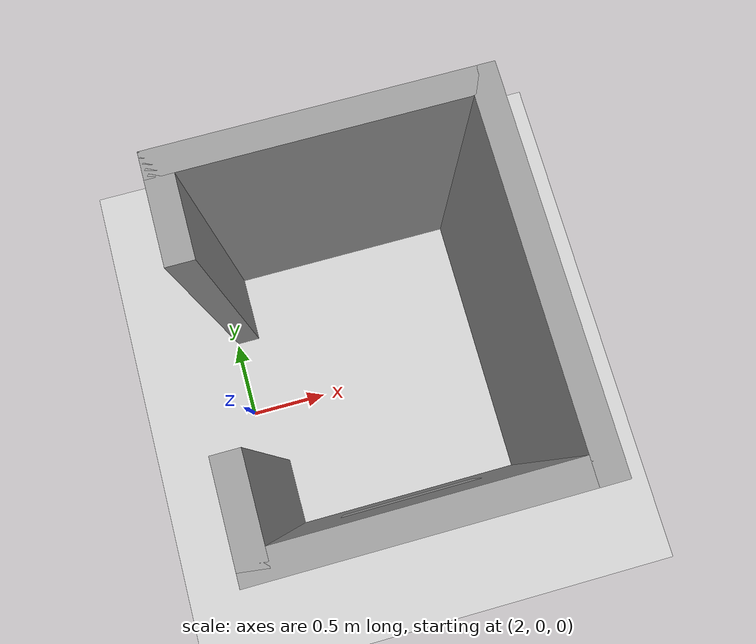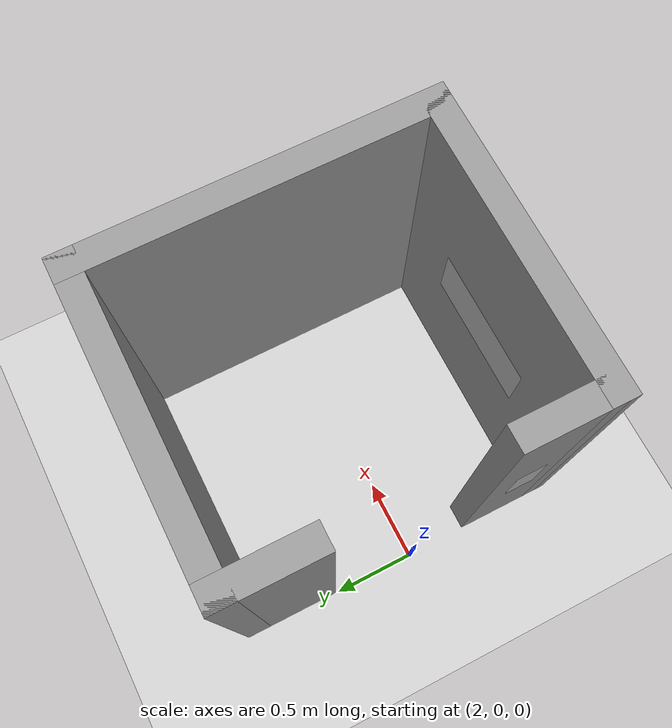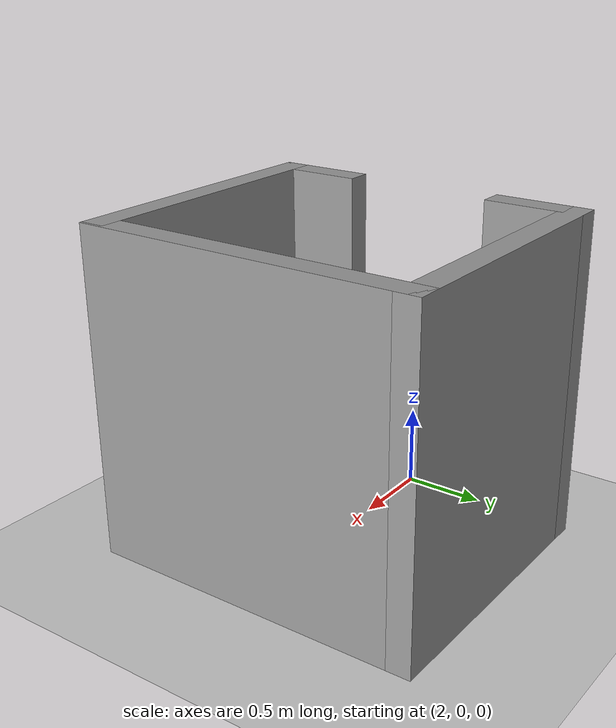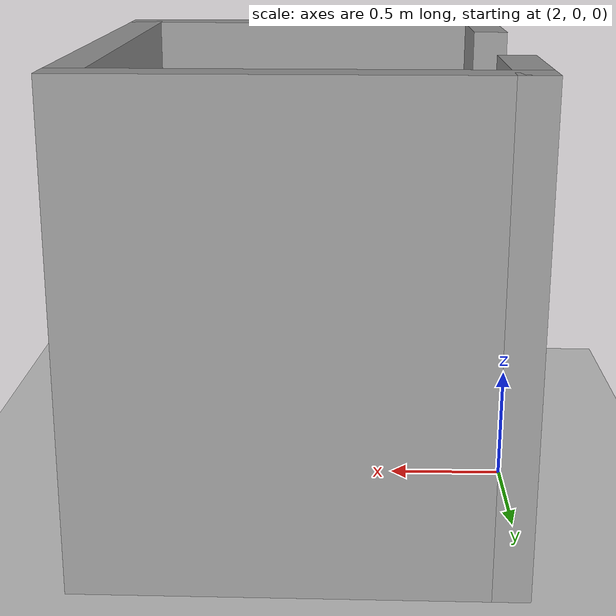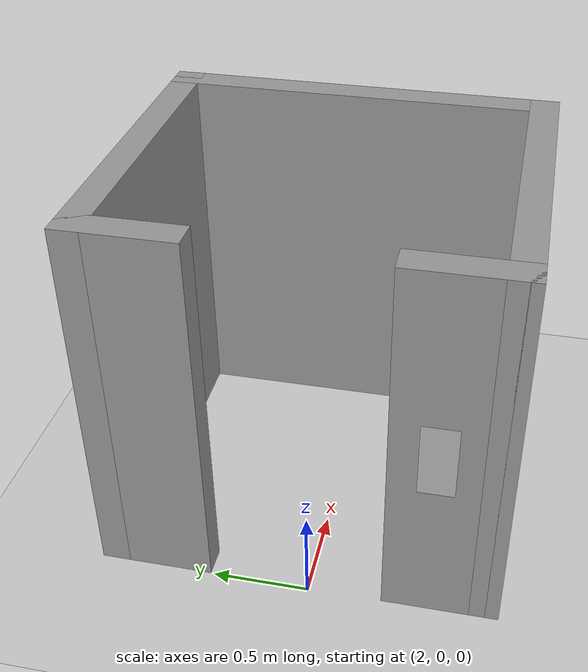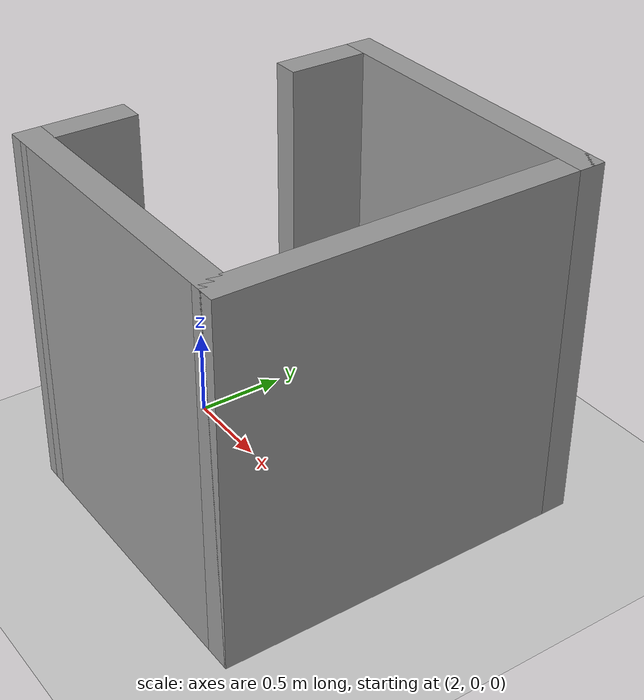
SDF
<sdf version="1.6">
 <world name="default">
  <light name="sun" type="directional">
   <pose>0 0 10 0 -0 0</pose>
   <diffuse>0.8 0.8 0.8 1</diffuse>
   <specular>0.2 0.2 0.2 1</specular>
   <attenuation>
    <range>1000</range>
    <constant>0.9</constant>
    <linear>0.01</linear>
    <quadratic>0.001</quadratic>
   </attenuation>
   <direction>-0.5 0.1 -0.9</direction>
  </light>
  <model name="ground_plane">
   <static>1</static>
   <link name="link">
    <collision name="collision">
     <geometry><plane><normal>0 0 1</normal><size>100 100</size></plane></geometry>
     <surface><friction><ode><mu>100</mu><mu2>50</mu2></ode></friction></surface>
    </collision>
    <visual name="visual">
     <cast_shadows>0</cast_shadows>
     <geometry><plane><normal>0 0 1</normal><size>100 100</size></plane></geometry>
     <material>
      <script><uri>file://media/materials/scripts/gazebo.material</uri><name>Gazebo/Grey</name></script>
     </material>
    </visual>
   </link>
  </model>
  <gravity>0 0 -9.8</gravity>
  <magnetic_field>6e-06 2.3e-05 -4.2e-05</magnetic_field>
  <atmosphere type="adiabatic"/>
  <physics name="default_physics" default="0" type="ode">
   <max_step_size>0.001</max_step_size>
   <real_time_factor>1</real_time_factor>
   <real_time_update_rate>1000</real_time_update_rate>
  </physics>
  <scene><ambient>0.4 0.4 0.4 1</ambient><background>0.7 0.7 0.7 1</background><shadows>1</shadows></scene>
  <audio><device>default</device></audio>
  <spherical_coordinates>
   <surface_model>EARTH_WGS84</surface_model>
   <latitude_deg>0</latitude_deg>
   <longitude_deg>0</longitude_deg>
   <elevation>0</elevation>
   <heading_deg>0</heading_deg>
  </spherical_coordinates>
  <model name="Untitled">
   <pose>2.90001 0.07 0 0 -0 0</pose>
   <link name="Wall_0">
    <pose>-0.819991 -0 0 0 -0 1.57078</pose>
    <visual name="Wall_0_Visual_0">
     <pose>-0.7475 0 1 0 -0 0</pose>
     <geometry><box><size>0.595 0.15 2</size></box></geometry>
     <material>
      <script><uri>file://media/materials/scripts/gazebo.material</uri><name>Gazebo/Grey</name></script>
      <ambient>1 1 1 1</ambient>
     </material>
     <meta><layer>0</layer></meta>
    </visual>
    <collision name="Wall_0_Collision_0">
     <geometry><box><size>0.595 0.15 2</size></box></geometry>
     <pose>-0.7475 0 1 0 -0 0</pose>
    </collision>
    <visual name="Wall_0_Visual_1">
     <pose>0.7475 0 1 0 -0 0</pose>
     <geometry><box><size>0.595 0.15 2</size></box></geometry>
     <material>
      <script><uri>file://media/materials/scripts/gazebo.material</uri><name>Gazebo/Grey</name></script>
      <ambient>1 1 1 1</ambient>
     </material>
     <meta><layer>0</layer></meta>
    </visual>
    <collision name="Wall_0_Collision_1">
     <geometry><box><size>0.595 0.15 2</size></box></geometry>
     <pose>0.7475 0 1 0 -0 0</pose>
    </collision>
   </link>
   <link name="Wall_2">
    <collision name="Wall_2_Collision">
     <geometry><box><size>1.79 0.15 2</size></box></geometry>
     <pose>0 0 1 0 -0 0</pose>
    </collision>
    <visual name="Wall_2_Visual">
     <pose>0 0 1 0 -0 0</pose>
     <geometry><box><size>1.79 0.15 2</size></box></geometry>
     <material>
      <script><uri>file://media/materials/scripts/gazebo.material</uri><name>Gazebo/Grey</name></script>
      <ambient>1 1 1 1</ambient>
     </material>
     <meta><layer>0</layer></meta>
    </visual>
    <pose>-7e-06 -0.97 0 0 -0 0</pose>
   </link>
   <link name="Wall_4">
    <collision name="Wall_4_Collision">
     <geometry><box><size>2.09 0.15 2</size></box></geometry>
     <pose>0 0 1 0 -0 0</pose>
    </collision>
    <visual name="Wall_4_Visual">
     <pose>0 0 1 0 -0 0</pose>
     <geometry><box><size>2.09 0.15 2</size></box></geometry>
     <material>
      <script><uri>file://media/materials/scripts/gazebo.material</uri><name>Gazebo/Grey</name></script>
      <ambient>1 1 1 1</ambient>
     </material>
     <meta><layer>0</layer></meta>
    </visual>
    <pose>0.819993 -0 0 0 -0 1.5708</pose>
   </link>
   <link name="Wall_5">
    <collision name="Wall_5_Collision">
     <geometry><box><size>1.79 0.15 2</size></box></geometry>
     <pose>0 0 1 0 -0 0</pose>
    </collision>
    <visual name="Wall_5_Visual">
     <pose>0 0 1 0 -0 0</pose>
     <geometry><box><size>1.79 0.15 2</size></box></geometry>
     <material>
      <script><uri>file://media/materials/scripts/gazebo.material</uri><name>Gazebo/Grey</name></script>
      <ambient>1 1 1 1</ambient>
     </material>
     <meta><layer>0</layer></meta>
    </visual>
    <pose>9e-06 0.97 0 0 -0 -3.14159</pose>
   </link>
   <static>1</static>
  </model>
  <model name="elevator_updown_button">
   <static>1</static>
   <link name="link">
    <collision name="collision">
     <geometry><plane><normal>0 0 1</normal><size>100 100</size></plane></geometry>
     <surface><friction><ode><mu>100</mu><mu2>50</mu2></ode></friction></surface>
    </collision>
    <visual name="visual">
     <cast_shadows>0</cast_shadows>
     <geometry><plane><normal>0 0 1</normal><size>0.4 0.18</size></plane></geometry>
     <material>
      <script>
       <uri>model://elevator_updown_button/materials/scripts</uri>
       <uri>model://elevator_updown_button/materials/textures/</uri>
       <name>elevator_updown_button/Image</name>
      </script>
     </material>
    </visual>
   </link>
   <pose>1.99895 -0.615005 1 1.57 1.57 -1.57</pose>
  </model>
  <model name="elevator_num_button">
   <static>1</static>
   <link name="link">
    <collision name="collision">
     <geometry><plane><normal>0 0 1</normal><size>100 100</size></plane></geometry>
     <surface><friction><ode><mu>100</mu><mu2>50</mu2></ode></friction></surface>
    </collision>
    <visual name="visual">
     <cast_shadows>0</cast_shadows>
     <geometry><plane><normal>0 0 1</normal><size>0.8 0.36</size></plane></geometry>
     <material>
      <script>
       <uri>model://elevator_num_button/materials/scripts</uri>
       <uri>model://elevator_num_button/materials/textures/</uri>
       <name>elevator_num_button/Image</name>
      </script>
     </material>
    </visual>
   </link>
   <pose>2.86345 -0.82079 1 1.57 -0 -3.14</pose>
  </model>
  <light name="user_spot_light_0" type="spot">
   <pose>2.78138 0.011799 1 0 -0 0</pose>
   <diffuse>0.5 0.5 0.5 1</diffuse>
   <specular>0.1 0.1 0.1 1</specular>
   <direction>0 0 -1</direction>
   <attenuation>
    <range>20</range>
    <constant>0.5</constant>
    <linear>0.01</linear>
    <quadratic>0.001</quadratic>
   </attenuation>
   <cast_shadows>0</cast_shadows>
   <spot><inner_angle>0.6</inner_angle><outer_angle>1</outer_angle><falloff>1</falloff></spot>
  </light>
 </world>
</sdf>
